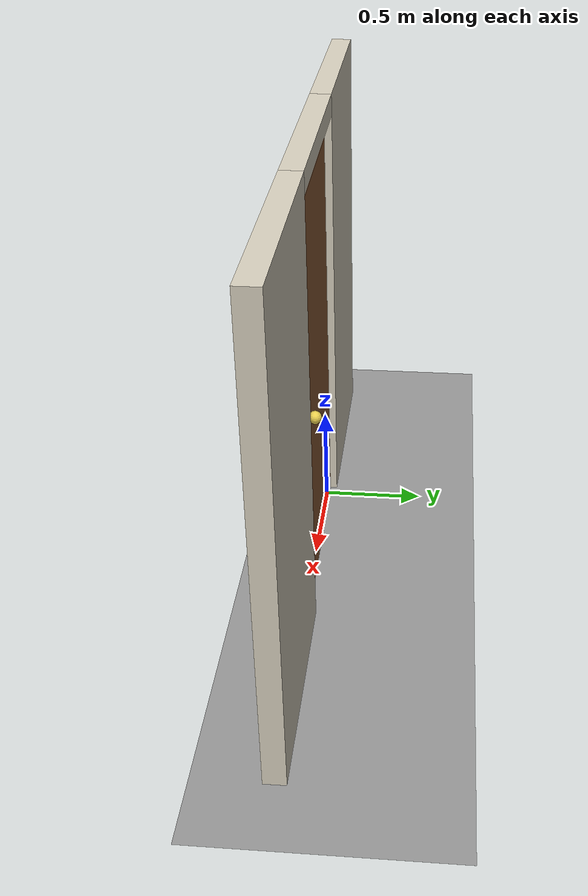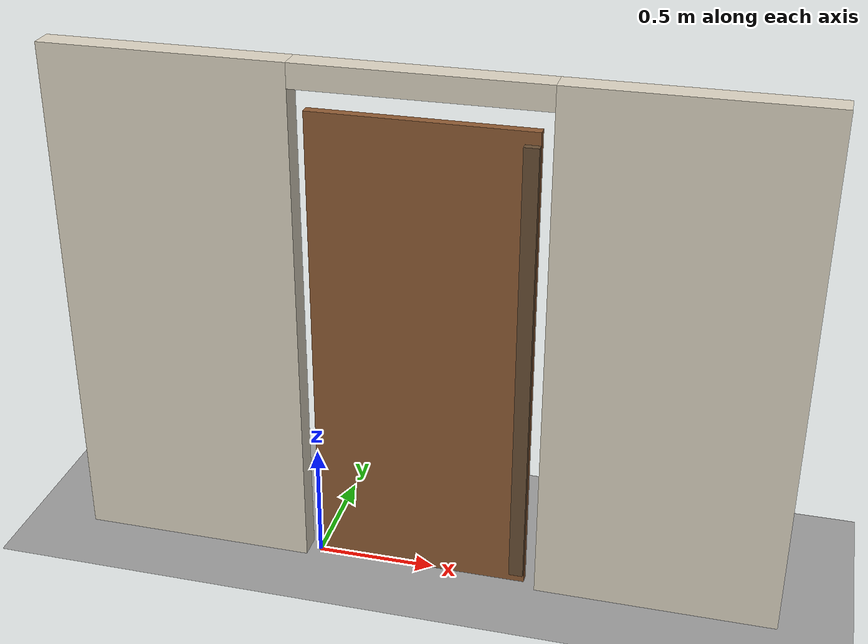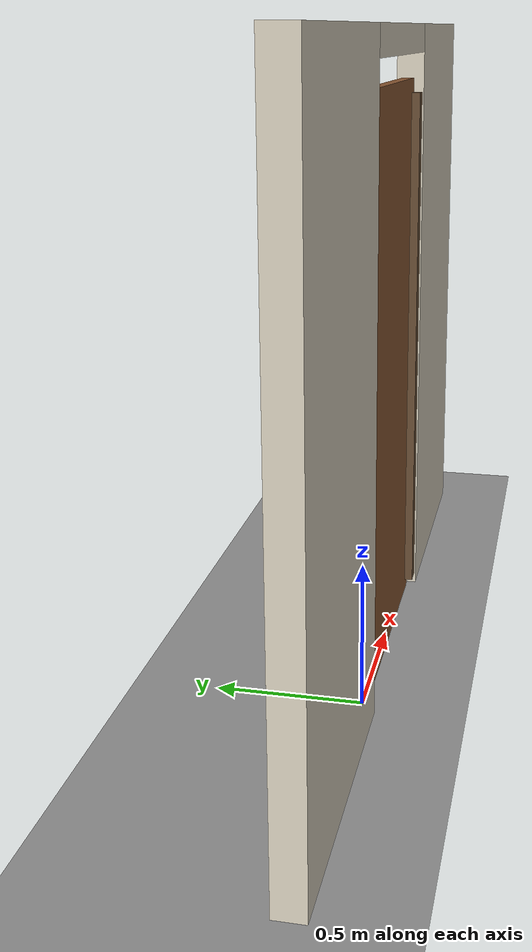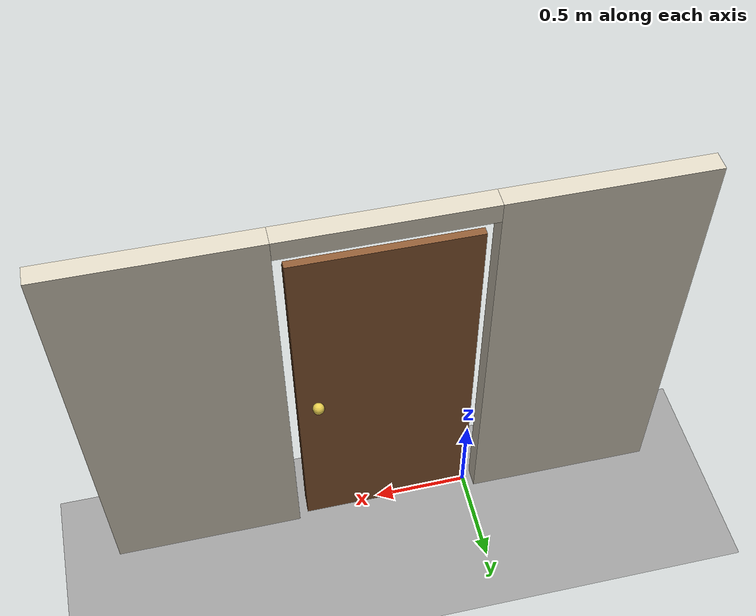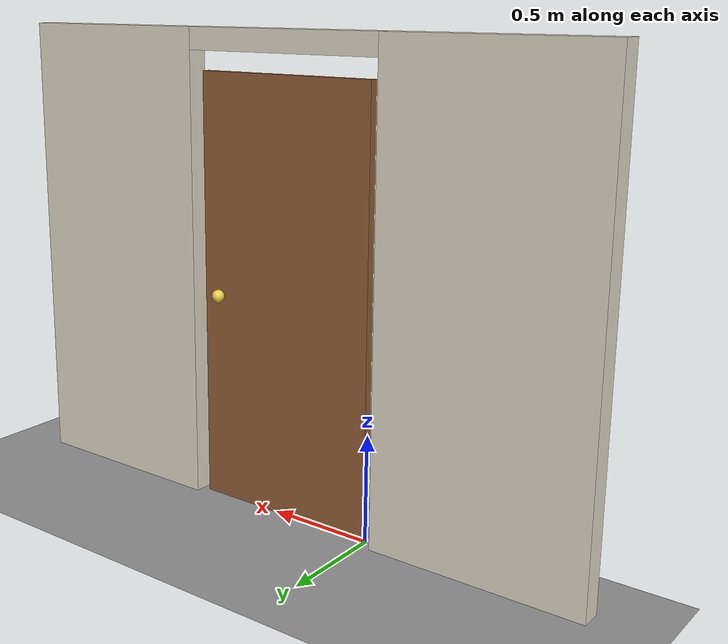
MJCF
<mujoco model="door_swings_shut">
  <compiler angle="radian"/>
  <option timestep="0.002" gravity="0 0 -9.81"/>
  <worldbody>
    <light name="sun" pos="0 -3 4" dir="0 0.6 -0.8" diffuse="0.8 0.8 0.8"/>
    <geom name="floor" type="plane" pos="0 0 0" size="5 5 0.1" rgba="0.6 0.6 0.6 1"/>
    <geom name="wall_hinge_side" type="box" pos="-0.55 0 1.1" size="0.5 0.05 1.1" rgba="0.85 0.82 0.75 1"/>
    <geom name="wall_latch_side" type="box" pos="1.45 0 1.1" size="0.5 0.05 1.1" rgba="0.85 0.82 0.75 1"/>
    <geom name="lintel" type="box" pos="0.45 0 2.15" size="0.5 0.05 0.05" rgba="0.85 0.82 0.75 1"/>
    <geom name="door_stop" type="box" pos="0.87 -0.036 1.01" size="0.03 0.015 0.95" rgba="0.4 0.3 0.2 1"/>
    <body name="door" pos="0 0 0">
      <joint name="hinge" type="hinge" pos="0 0 0" axis="0 0 1" limited="true" range="0 1.7" stiffness="20" springref="-0.1" damping="12"/>
      <geom name="door_panel" type="box" pos="0.45 0 1.01" size="0.45 0.02 1.0" mass="30" rgba="0.55 0.35 0.2 1"/>
      <geom name="door_knob" type="sphere" pos="0.8 0.05 1.0" size="0.03" mass="0.2" rgba="0.9 0.8 0.3 1"/>
    </body>
  </worldbody>
  <keyframe>
    <key name="start" qpos="1.4" qvel="0"/>
  </keyframe>
</mujoco>
